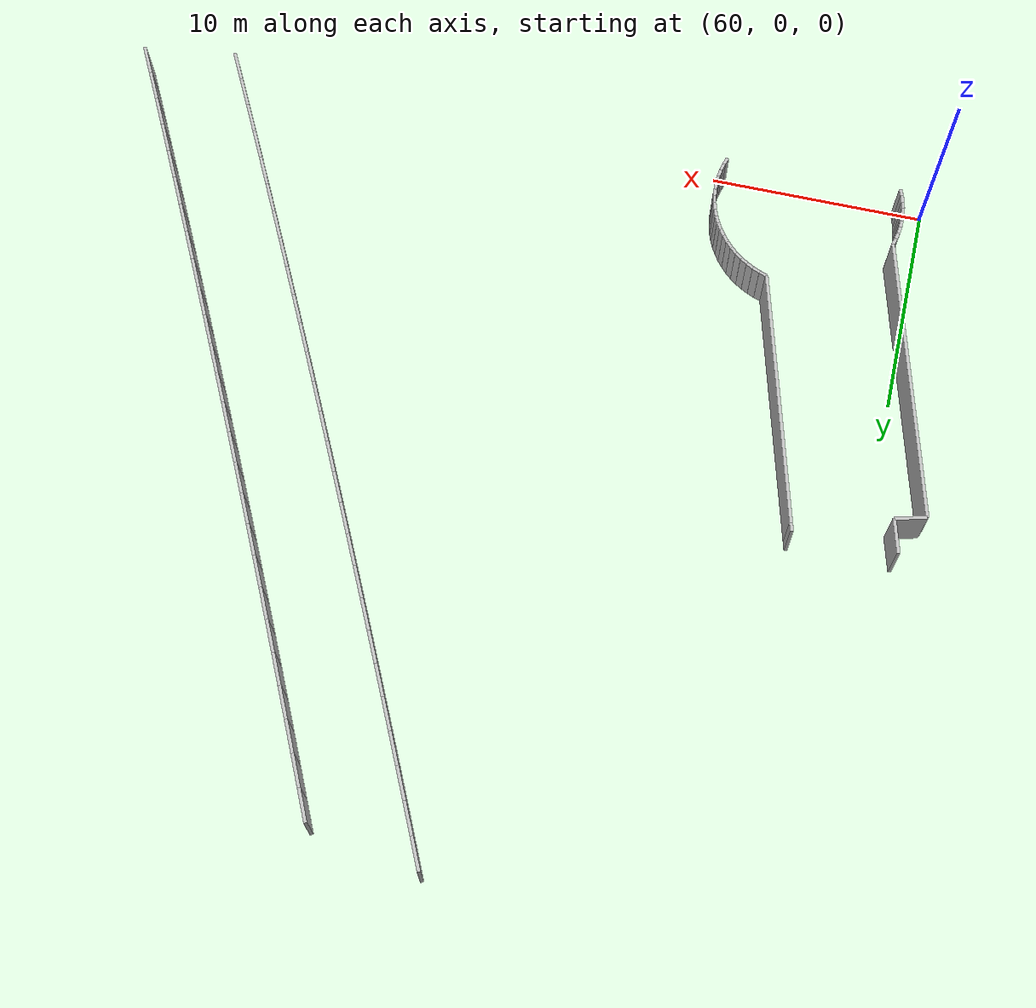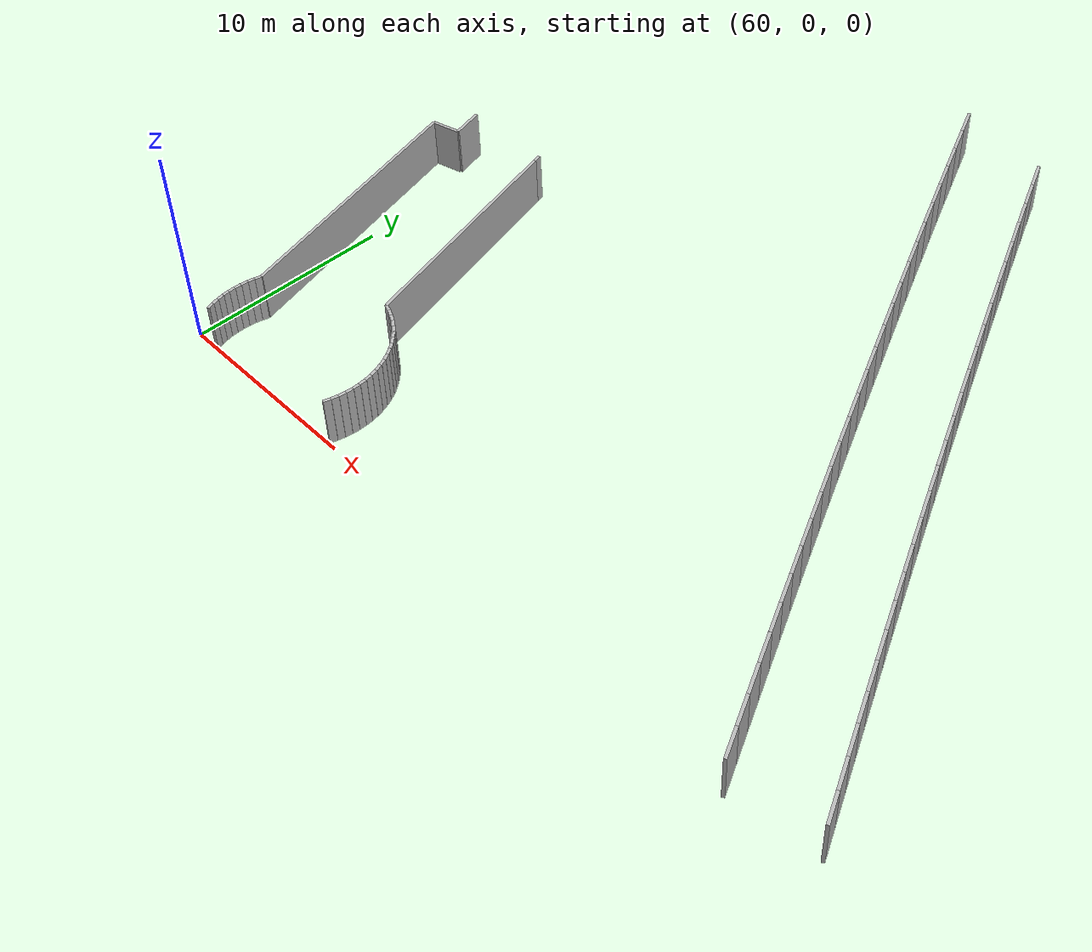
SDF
<sdf version="1.6">
 <model name="sps_0207">
  <static>1</static>
  <allow_auto_disable>0</allow_auto_disable>
  <link name="Wall270">
   <collision name="collision"><geometry><box><size>0.404023 0.15 2.5</size></box></geometry></collision>
   <visual name="visual">
    <geometry><box><size>0.404023 0.15 2.5</size></box></geometry>
    <transparency>0.0</transparency>
   </visual>
   <pose>63.4606 17.6979 1.25 0 -0 1.83141</pose>
  </link>
  <link name="Wall329">
   <collision name="collision"><geometry><box><size>1.61069 0.15 2.5</size></box></geometry></collision>
   <visual name="visual">
    <geometry><box><size>1.61069 0.15 2.5</size></box></geometry>
    <transparency>0.0</transparency>
   </visual>
   <pose>58.9327 17.1149 1.25 0 -0 1.83117</pose>
  </link>
  <link name="Wall1853">
   <collision name="collision"><geometry><box><size>12.1005 0.15 2.5</size></box></geometry></collision>
   <visual name="visual">
    <geometry><box><size>12.1005 0.15 2.5</size></box></geometry>
    <transparency>0.0</transparency>
   </visual>
   <pose>65.0825 11.6597 1.25 0 0 -1.30832</pose>
  </link>
  <link name="Wall1854">
   <collision name="collision"><geometry><box><size>0.359052 0.15 2.5</size></box></geometry></collision>
   <visual name="visual">
    <geometry><box><size>0.359052 0.15 2.5</size></box></geometry>
    <transparency>0.0</transparency>
   </visual>
   <pose>66.8222 5.75838 1.25 0 0 -0.330674</pose>
  </link>
  <link name="Wall1855">
   <collision name="collision"><geometry><box><size>0.358996 0.15 2.5</size></box></geometry></collision>
   <visual name="visual">
    <geometry><box><size>0.358996 0.15 2.5</size></box></geometry>
    <transparency>0.0</transparency>
   </visual>
   <pose>67.1565 5.6281 1.25 0 0 -0.412683</pose>
  </link>
  <link name="Wall1856">
   <collision name="collision"><geometry><box><size>0.359076 0.15 2.5</size></box></geometry></collision>
   <visual name="visual">
    <geometry><box><size>0.359076 0.15 2.5</size></box></geometry>
    <transparency>0.0</transparency>
   </visual>
   <pose>67.479 5.47099 1.25 0 0 -0.493907</pose>
  </link>
  <link name="Wall1857">
   <collision name="collision"><geometry><box><size>0.359122 0.15 2.5</size></box></geometry></collision>
   <visual name="visual">
    <geometry><box><size>0.359122 0.15 2.5</size></box></geometry>
    <transparency>0.0</transparency>
   </visual>
   <pose>67.7877 5.2881 1.25 0 0 -0.575841</pose>
  </link>
  <link name="Wall1858">
   <collision name="collision"><geometry><box><size>0.35892 0.15 2.5</size></box></geometry></collision>
   <visual name="visual">
    <geometry><box><size>0.35892 0.15 2.5</size></box></geometry>
    <transparency>0.0</transparency>
   </visual>
   <pose>68.0803 5.0807 1.25 0 0 -0.657106</pose>
  </link>
  <link name="Wall1859">
   <collision name="collision"><geometry><box><size>0.359021 0.15 2.5</size></box></geometry></collision>
   <visual name="visual">
    <geometry><box><size>0.359021 0.15 2.5</size></box></geometry>
    <transparency>0.0</transparency>
   </visual>
   <pose>68.355 4.85008 1.25 0 0 -0.739702</pose>
  </link>
  <link name="Wall1860">
   <collision name="collision"><geometry><box><size>0.358995 0.15 2.5</size></box></geometry></collision>
   <visual name="visual">
    <geometry><box><size>0.358995 0.15 2.5</size></box></geometry>
    <transparency>0.0</transparency>
   </visual>
   <pose>68.61 4.59779 1.25 0 0 -0.820389</pose>
  </link>
  <link name="Wall1861">
   <collision name="collision"><geometry><box><size>0.359109 0.15 2.5</size></box></geometry></collision>
   <visual name="visual">
    <geometry><box><size>0.359109 0.15 2.5</size></box></geometry>
    <transparency>0.0</transparency>
   </visual>
   <pose>68.8437 4.32561 1.25 0 0 -0.90224</pose>
  </link>
  <link name="Wall1862">
   <collision name="collision"><geometry><box><size>0.359062 0.15 2.5</size></box></geometry></collision>
   <visual name="visual">
    <geometry><box><size>0.359062 0.15 2.5</size></box></geometry>
    <transparency>0.0</transparency>
   </visual>
   <pose>69.0544 4.0352 1.25 0 0 -0.984067</pose>
  </link>
  <link name="Wall1863">
   <collision name="collision"><geometry><box><size>0.358927 0.15 2.5</size></box></geometry></collision>
   <visual name="visual">
    <geometry><box><size>0.358927 0.15 2.5</size></box></geometry>
    <transparency>0.0</transparency>
   </visual>
   <pose>69.2407 3.72868 1.25 0 0 -1.06523</pose>
  </link>
  <link name="Wall1864">
   <collision name="collision"><geometry><box><size>0.359119 0.15 2.5</size></box></geometry></collision>
   <visual name="visual">
    <geometry><box><size>0.359119 0.15 2.5</size></box></geometry>
    <transparency>0.0</transparency>
   </visual>
   <pose>69.4015 3.40797 1.25 0 0 -1.14729</pose>
  </link>
  <link name="Wall1865">
   <collision name="collision"><geometry><box><size>0.359057 0.15 2.5</size></box></geometry></collision>
   <visual name="visual">
    <geometry><box><size>0.359057 0.15 2.5</size></box></geometry>
    <transparency>0.0</transparency>
   </visual>
   <pose>69.5355 3.07518 1.25 0 0 -1.22824</pose>
  </link>
  <link name="Wall1866">
   <collision name="collision"><geometry><box><size>0.359079 0.15 2.5</size></box></geometry></collision>
   <visual name="visual">
    <geometry><box><size>0.359079 0.15 2.5</size></box></geometry>
    <transparency>0.0</transparency>
   </visual>
   <pose>69.6421 2.73259 1.25 0 0 -1.31052</pose>
  </link>
  <link name="Wall1867">
   <collision name="collision"><geometry><box><size>0.359147 0.15 2.5</size></box></geometry></collision>
   <visual name="visual">
    <geometry><box><size>0.359147 0.15 2.5</size></box></geometry>
    <transparency>0.0</transparency>
   </visual>
   <pose>69.7203 2.3824 1.25 0 0 -1.39157</pose>
  </link>
  <link name="Wall1868">
   <collision name="collision"><geometry><box><size>0.359111 0.15 2.5</size></box></geometry></collision>
   <visual name="visual">
    <geometry><box><size>0.359111 0.15 2.5</size></box></geometry>
    <transparency>0.0</transparency>
   </visual>
   <pose>69.7697 2.02699 1.25 0 0 -1.47377</pose>
  </link>
  <link name="Wall1869">
   <collision name="collision"><geometry><box><size>0.359053 0.15 2.5</size></box></geometry></collision>
   <visual name="visual">
    <geometry><box><size>0.359053 0.15 2.5</size></box></geometry>
    <transparency>0.0</transparency>
   </visual>
   <pose>69.7899 1.66878 1.25 0 0 -1.55516</pose>
  </link>
  <link name="Wall1870">
   <collision name="collision"><geometry><box><size>0.358944 0.15 2.5</size></box></geometry></collision>
   <visual name="visual">
    <geometry><box><size>0.358944 0.15 2.5</size></box></geometry>
    <transparency>0.0</transparency>
   </visual>
   <pose>69.7808 1.31019 1.25 0 0 -1.63716</pose>
  </link>
  <link name="Wall1871">
   <collision name="collision"><geometry><box><size>0.359136 0.15 2.5</size></box></geometry></collision>
   <visual name="visual">
    <geometry><box><size>0.359136 0.15 2.5</size></box></geometry>
    <transparency>0.0</transparency>
   </visual>
   <pose>69.7425 0.953505 1.25 0 0 -1.71851</pose>
  </link>
  <link name="Wall1872">
   <collision name="collision"><geometry><box><size>0.358993 0.15 2.5</size></box></geometry></collision>
   <visual name="visual">
    <geometry><box><size>0.358993 0.15 2.5</size></box></geometry>
    <transparency>0.0</transparency>
   </visual>
   <pose>69.6753 0.601088 1.25 0 0 -1.79994</pose>
  </link>
  <link name="Wall1873">
   <collision name="collision"><geometry><box><size>0.359076 0.15 2.5</size></box></geometry></collision>
   <visual name="visual">
    <geometry><box><size>0.359076 0.15 2.5</size></box></geometry>
    <transparency>0.0</transparency>
   </visual>
   <pose>69.5795 0.255385 1.25 0 0 -1.88228</pose>
  </link>
  <link name="Wall1900">
   <collision name="collision"><geometry><box><size>0.335259 0.15 2.5</size></box></geometry></collision>
   <visual name="visual">
    <geometry><box><size>0.335259 0.15 2.5</size></box></geometry>
    <transparency>0.0</transparency>
   </visual>
   <pose>61.2461 0.148513 1.25 0 -0 1.90775</pose>
  </link>
  <link name="Wall1901">
   <collision name="collision"><geometry><box><size>0.335064 0.15 2.5</size></box></geometry></collision>
   <visual name="visual">
    <geometry><box><size>0.335064 0.15 2.5</size></box></geometry>
    <transparency>0.0</transparency>
   </visual>
   <pose>61.1475 0.468612 1.25 0 -0 1.83093</pose>
  </link>
  <link name="Wall1902">
   <collision name="collision"><geometry><box><size>0.33526 0.15 2.5</size></box></geometry></collision>
   <visual name="visual">
    <geometry><box><size>0.33526 0.15 2.5</size></box></geometry>
    <transparency>0.0</transparency>
   </visual>
   <pose>61.0738 0.795302 1.25 0 -0 1.75498</pose>
  </link>
  <link name="Wall1903">
   <collision name="collision"><geometry><box><size>0.335131 0.15 2.5</size></box></geometry></collision>
   <visual name="visual">
    <geometry><box><size>0.335131 0.15 2.5</size></box></geometry>
    <transparency>0.0</transparency>
   </visual>
   <pose>61.025 1.12669 1.25 0 -0 1.67846</pose>
  </link>
  <link name="Wall1904">
   <collision name="collision"><geometry><box><size>0.335379 0.15 2.5</size></box></geometry></collision>
   <visual name="visual">
    <geometry><box><size>0.335379 0.15 2.5</size></box></geometry>
    <transparency>0.0</transparency>
   </visual>
   <pose>61.0016 1.46089 1.25 0 -0 1.60301</pose>
  </link>
  <link name="Wall1905">
   <collision name="collision"><geometry><box><size>0.335114 0.15 2.5</size></box></geometry></collision>
   <visual name="visual">
    <geometry><box><size>0.335114 0.15 2.5</size></box></geometry>
    <transparency>0.0</transparency>
   </visual>
   <pose>61.0037 1.79588 1.25 0 -0 1.52598</pose>
  </link>
  <link name="Wall1906">
   <collision name="collision"><geometry><box><size>0.335268 0.15 2.5</size></box></geometry></collision>
   <visual name="visual">
    <geometry><box><size>0.335268 0.15 2.5</size></box></geometry>
    <transparency>0.0</transparency>
   </visual>
   <pose>61.0315 2.12968 1.25 0 -0 1.44999</pose>
  </link>
  <link name="Wall1907">
   <collision name="collision"><geometry><box><size>0.335279 0.15 2.5</size></box></geometry></collision>
   <visual name="visual">
    <geometry><box><size>0.335279 0.15 2.5</size></box></geometry>
    <transparency>0.0</transparency>
   </visual>
   <pose>61.0845 2.46049 1.25 0 -0 1.37383</pose>
  </link>
  <link name="Wall1908">
   <collision name="collision"><geometry><box><size>0.335232 0.15 2.5</size></box></geometry></collision>
   <visual name="visual">
    <geometry><box><size>0.335232 0.15 2.5</size></box></geometry>
    <transparency>0.0</transparency>
   </visual>
   <pose>61.1625 2.7863 1.25 0 -0 1.29777</pose>
  </link>
  <link name="Wall1909">
   <collision name="collision"><geometry><box><size>13.4709 0.15 2.5</size></box></geometry></collision>
   <visual name="visual">
    <geometry><box><size>13.4709 0.15 2.5</size></box></geometry>
    <transparency>0.0</transparency>
   </visual>
   <pose>59.4733 9.45601 1.25 0 -0 1.83123</pose>
  </link>
  <link name="Wall1910">
   <collision name="collision"><geometry><box><size>1.44982 0.15 2.5</size></box></geometry></collision>
   <visual name="visual">
    <geometry><box><size>1.44982 0.15 2.5</size></box></geometry>
    <transparency>0.0</transparency>
   </visual>
   <pose>58.4394 16.1505 1.25 0 -0 0.259754</pose>
  </link>
  <link name="Wall8336">
   <collision name="collision"><geometry><box><size>1.49884 0.15 2.5</size></box></geometry></collision>
   <visual name="visual">
    <geometry><box><size>1.49884 0.15 2.5</size></box></geometry>
    <transparency>0.0</transparency>
   </visual>
   <pose>76.0597 34.9892 1.25 0 0 -1.12727</pose>
  </link>
  <link name="Wall8337">
   <collision name="collision"><geometry><box><size>1.49912 0.15 2.5</size></box></geometry></collision>
   <visual name="visual">
    <geometry><box><size>1.49912 0.15 2.5</size></box></geometry>
    <transparency>0.0</transparency>
   </visual>
   <pose>76.7041 33.6358 1.25 0 0 -1.12556</pose>
  </link>
  <link name="Wall8338">
   <collision name="collision"><geometry><box><size>1.49891 0.15 2.5</size></box></geometry></collision>
   <visual name="visual">
    <geometry><box><size>1.49891 0.15 2.5</size></box></geometry>
    <transparency>0.0</transparency>
   </visual>
   <pose>77.3507 32.2834 1.25 0 0 -1.12405</pose>
  </link>
  <link name="Wall8339">
   <collision name="collision"><geometry><box><size>1.49891 0.15 2.5</size></box></geometry></collision>
   <visual name="visual">
    <geometry><box><size>1.49891 0.15 2.5</size></box></geometry>
    <transparency>0.0</transparency>
   </visual>
   <pose>77.9993 30.9321 1.25 0 0 -1.12256</pose>
  </link>
  <link name="Wall8340">
   <collision name="collision"><geometry><box><size>1.499 0.15 2.5</size></box></geometry></collision>
   <visual name="visual">
    <geometry><box><size>1.499 0.15 2.5</size></box></geometry>
    <transparency>0.0</transparency>
   </visual>
   <pose>78.65 29.5818 1.25 0 0 -1.12082</pose>
  </link>
  <link name="Wall8341">
   <collision name="collision"><geometry><box><size>1.49895 0.15 2.5</size></box></geometry></collision>
   <visual name="visual">
    <geometry><box><size>1.49895 0.15 2.5</size></box></geometry>
    <transparency>0.0</transparency>
   </visual>
   <pose>79.303 28.2325 1.25 0 0 -1.11931</pose>
  </link>
  <link name="Wall8342">
   <collision name="collision"><geometry><box><size>1.499 0.15 2.5</size></box></geometry></collision>
   <visual name="visual">
    <geometry><box><size>1.499 0.15 2.5</size></box></geometry>
    <transparency>0.0</transparency>
   </visual>
   <pose>79.958 26.8842 1.25 0 0 -1.11784</pose>
  </link>
  <link name="Wall8343">
   <collision name="collision"><geometry><box><size>1.49882 0.15 2.5</size></box></geometry></collision>
   <visual name="visual">
    <geometry><box><size>1.49882 0.15 2.5</size></box></geometry>
    <transparency>0.0</transparency>
   </visual>
   <pose>80.6151 25.537 1.25 0 0 -1.11615</pose>
  </link>
  <link name="Wall8344">
   <collision name="collision"><geometry><box><size>1.49912 0.15 2.5</size></box></geometry></collision>
   <visual name="visual">
    <geometry><box><size>1.49912 0.15 2.5</size></box></geometry>
    <transparency>0.0</transparency>
   </visual>
   <pose>81.2744 24.1908 1.25 0 0 -1.11461</pose>
  </link>
  <link name="Wall8345">
   <collision name="collision"><geometry><box><size>1.49883 0.15 2.5</size></box></geometry></collision>
   <visual name="visual">
    <geometry><box><size>1.49883 0.15 2.5</size></box></geometry>
    <transparency>0.0</transparency>
   </visual>
   <pose>81.9359 22.8457 1.25 0 0 -1.11289</pose>
  </link>
  <link name="Wall8346">
   <collision name="collision"><geometry><box><size>1.49896 0.15 2.5</size></box></geometry></collision>
   <visual name="visual">
    <geometry><box><size>1.49896 0.15 2.5</size></box></geometry>
    <transparency>0.0</transparency>
   </visual>
   <pose>82.5995 21.5017 1.25 0 0 -1.11143</pose>
  </link>
  <link name="Wall8347">
   <collision name="collision"><geometry><box><size>1.4989 0.15 2.5</size></box></geometry></collision>
   <visual name="visual">
    <geometry><box><size>1.4989 0.15 2.5</size></box></geometry>
    <transparency>0.0</transparency>
   </visual>
   <pose>83.2653 20.1587 1.25 0 0 -1.10977</pose>
  </link>
  <link name="Wall8348">
   <collision name="collision"><geometry><box><size>1.49892 0.15 2.5</size></box></geometry></collision>
   <visual name="visual">
    <geometry><box><size>1.49892 0.15 2.5</size></box></geometry>
    <transparency>0.0</transparency>
   </visual>
   <pose>83.9331 18.8168 1.25 0 0 -1.10828</pose>
  </link>
  <link name="Wall8349">
   <collision name="collision"><geometry><box><size>1.49911 0.15 2.5</size></box></geometry></collision>
   <visual name="visual">
    <geometry><box><size>1.49911 0.15 2.5</size></box></geometry>
    <transparency>0.0</transparency>
   </visual>
   <pose>84.603 17.4758 1.25 0 0 -1.10675</pose>
  </link>
  <link name="Wall8350">
   <collision name="collision"><geometry><box><size>1.49909 0.15 2.5</size></box></geometry></collision>
   <visual name="visual">
    <geometry><box><size>1.49909 0.15 2.5</size></box></geometry>
    <transparency>0.0</transparency>
   </visual>
   <pose>85.275 16.1358 1.25 0 0 -1.10505</pose>
  </link>
  <link name="Wall8351">
   <collision name="collision"><geometry><box><size>1.49887 0.15 2.5</size></box></geometry></collision>
   <visual name="visual">
    <geometry><box><size>1.49887 0.15 2.5</size></box></geometry>
    <transparency>0.0</transparency>
   </visual>
   <pose>85.9492 14.797 1.25 0 0 -1.10352</pose>
  </link>
  <link name="Wall8352">
   <collision name="collision"><geometry><box><size>1.49894 0.15 2.5</size></box></geometry></collision>
   <visual name="visual">
    <geometry><box><size>1.49894 0.15 2.5</size></box></geometry>
    <transparency>0.0</transparency>
   </visual>
   <pose>86.6254 13.4593 1.25 0 0 -1.102</pose>
  </link>
  <link name="Wall8353">
   <collision name="collision"><geometry><box><size>1.49882 0.15 2.5</size></box></geometry></collision>
   <visual name="visual">
    <geometry><box><size>1.49882 0.15 2.5</size></box></geometry>
    <transparency>0.0</transparency>
   </visual>
   <pose>87.3038 12.1227 1.25 0 0 -1.10036</pose>
  </link>
  <link name="Wall8354">
   <collision name="collision"><geometry><box><size>1.49889 0.15 2.5</size></box></geometry></collision>
   <visual name="visual">
    <geometry><box><size>1.49889 0.15 2.5</size></box></geometry>
    <transparency>0.0</transparency>
   </visual>
   <pose>87.9842 10.7872 1.25 0 0 -1.09874</pose>
  </link>
  <link name="Wall8355">
   <collision name="collision"><geometry><box><size>1.49894 0.15 2.5</size></box></geometry></collision>
   <visual name="visual">
    <geometry><box><size>1.49894 0.15 2.5</size></box></geometry>
    <transparency>0.0</transparency>
   </visual>
   <pose>88.6668 9.45271 1.25 0 0 -1.09724</pose>
  </link>
  <link name="Wall8356">
   <collision name="collision"><geometry><box><size>1.49894 0.15 2.5</size></box></geometry></collision>
   <visual name="visual">
    <geometry><box><size>1.49894 0.15 2.5</size></box></geometry>
    <transparency>0.0</transparency>
   </visual>
   <pose>89.3516 8.11931 1.25 0 0 -1.09555</pose>
  </link>
  <link name="Wall8357">
   <collision name="collision"><geometry><box><size>1.49899 0.15 2.5</size></box></geometry></collision>
   <visual name="visual">
    <geometry><box><size>1.49899 0.15 2.5</size></box></geometry>
    <transparency>0.0</transparency>
   </visual>
   <pose>90.0385 6.787 1.25 0 0 -1.09396</pose>
  </link>
  <link name="Wall8358">
   <collision name="collision"><geometry><box><size>1.49878 0.15 2.5</size></box></geometry></collision>
   <visual name="visual">
    <geometry><box><size>1.49878 0.15 2.5</size></box></geometry>
    <transparency>0.0</transparency>
   </visual>
   <pose>90.7273 5.45579 1.25 0 0 -1.09256</pose>
  </link>
  <link name="Wall8359">
   <collision name="collision"><geometry><box><size>1.49898 0.15 2.5</size></box></geometry></collision>
   <visual name="visual">
    <geometry><box><size>1.49898 0.15 2.5</size></box></geometry>
    <transparency>0.0</transparency>
   </visual>
   <pose>91.4183 4.12569 1.25 0 0 -1.0908</pose>
  </link>
  <link name="Wall8360">
   <collision name="collision"><geometry><box><size>1.49905 0.15 2.5</size></box></geometry></collision>
   <visual name="visual">
    <geometry><box><size>1.49905 0.15 2.5</size></box></geometry>
    <transparency>0.0</transparency>
   </visual>
   <pose>92.1115 2.79658 1.25 0 0 -1.0893</pose>
  </link>
  <link name="Wall8361">
   <collision name="collision"><geometry><box><size>1.4989 0.15 2.5</size></box></geometry></collision>
   <visual name="visual">
    <geometry><box><size>1.4989 0.15 2.5</size></box></geometry>
    <transparency>0.0</transparency>
   </visual>
   <pose>92.8068 1.46858 1.25 0 0 -1.08774</pose>
  </link>
  <link name="Wall8362">
   <collision name="collision"><geometry><box><size>1.49903 0.15 2.5</size></box></geometry></collision>
   <visual name="visual">
    <geometry><box><size>1.49903 0.15 2.5</size></box></geometry>
    <transparency>0.0</transparency>
   </visual>
   <pose>93.5041 0.141677 1.25 0 0 -1.08617</pose>
  </link>
  <link name="Wall9419">
   <collision name="collision"><geometry><box><size>1.49247 0.15 2.5</size></box></geometry></collision>
   <visual name="visual">
    <geometry><box><size>1.49247 0.15 2.5</size></box></geometry>
    <transparency>0.0</transparency>
   </visual>
   <pose>81.0843 34.0723 1.25 0 0 -1.12407</pose>
  </link>
  <link name="Wall9420">
   <collision name="collision"><geometry><box><size>1.49224 0.15 2.5</size></box></geometry></collision>
   <visual name="visual">
    <geometry><box><size>1.49224 0.15 2.5</size></box></geometry>
    <transparency>0.0</transparency>
   </visual>
   <pose>81.73 32.7269 1.25 0 0 -1.1225</pose>
  </link>
  <link name="Wall9421">
   <collision name="collision"><geometry><box><size>1.49256 0.15 2.5</size></box></geometry></collision>
   <visual name="visual">
    <geometry><box><size>1.49256 0.15 2.5</size></box></geometry>
    <transparency>0.0</transparency>
   </visual>
   <pose>82.378 31.3825 1.25 0 0 -1.12092</pose>
  </link>
  <link name="Wall9422">
   <collision name="collision"><geometry><box><size>1.49226 0.15 2.5</size></box></geometry></collision>
   <visual name="visual">
    <geometry><box><size>1.49226 0.15 2.5</size></box></geometry>
    <transparency>0.0</transparency>
   </visual>
   <pose>83.028 30.0391 1.25 0 0 -1.11937</pose>
  </link>
  <link name="Wall9423">
   <collision name="collision"><geometry><box><size>1.49234 0.15 2.5</size></box></geometry></collision>
   <visual name="visual">
    <geometry><box><size>1.49234 0.15 2.5</size></box></geometry>
    <transparency>0.0</transparency>
   </visual>
   <pose>83.6801 28.6968 1.25 0 0 -1.11776</pose>
  </link>
  <link name="Wall9424">
   <collision name="collision"><geometry><box><size>1.49251 0.15 2.5</size></box></geometry></collision>
   <visual name="visual">
    <geometry><box><size>1.49251 0.15 2.5</size></box></geometry>
    <transparency>0.0</transparency>
   </visual>
   <pose>84.3345 27.3555 1.25 0 0 -1.11604</pose>
  </link>
  <link name="Wall9425">
   <collision name="collision"><geometry><box><size>1.49238 0.15 2.5</size></box></geometry></collision>
   <visual name="visual">
    <geometry><box><size>1.49238 0.15 2.5</size></box></geometry>
    <transparency>0.0</transparency>
   </visual>
   <pose>84.991 26.0152 1.25 0 0 -1.11463</pose>
  </link>
  <link name="Wall9426">
   <collision name="collision"><geometry><box><size>1.49256 0.15 2.5</size></box></geometry></collision>
   <visual name="visual">
    <geometry><box><size>1.49256 0.15 2.5</size></box></geometry>
    <transparency>0.0</transparency>
   </visual>
   <pose>85.6496 24.6759 1.25 0 0 -1.11291</pose>
  </link>
  <link name="Wall9427">
   <collision name="collision"><geometry><box><size>1.49227 0.15 2.5</size></box></geometry></collision>
   <visual name="visual">
    <geometry><box><size>1.49227 0.15 2.5</size></box></geometry>
    <transparency>0.0</transparency>
   </visual>
   <pose>86.3103 23.3377 1.25 0 0 -1.11145</pose>
  </link>
  <link name="Wall9428">
   <collision name="collision"><geometry><box><size>1.49245 0.15 2.5</size></box></geometry></collision>
   <visual name="visual">
    <geometry><box><size>1.49245 0.15 2.5</size></box></geometry>
    <transparency>0.0</transparency>
   </visual>
   <pose>86.9731 22.0006 1.25 0 0 -1.10973</pose>
  </link>
  <link name="Wall9429">
   <collision name="collision"><geometry><box><size>1.4924 0.15 2.5</size></box></geometry></collision>
   <visual name="visual">
    <geometry><box><size>1.4924 0.15 2.5</size></box></geometry>
    <transparency>0.0</transparency>
   </visual>
   <pose>87.6381 20.6645 1.25 0 0 -1.10825</pose>
  </link>
  <link name="Wall9430">
   <collision name="collision"><geometry><box><size>1.4925 0.15 2.5</size></box></geometry></collision>
   <visual name="visual">
    <geometry><box><size>1.4925 0.15 2.5</size></box></geometry>
    <transparency>0.0</transparency>
   </visual>
   <pose>88.305 19.3294 1.25 0 0 -1.10673</pose>
  </link>
  <link name="Wall9431">
   <collision name="collision"><geometry><box><size>1.4924 0.15 2.5</size></box></geometry></collision>
   <visual name="visual">
    <geometry><box><size>1.4924 0.15 2.5</size></box></geometry>
    <transparency>0.0</transparency>
   </visual>
   <pose>88.9741 17.9953 1.25 0 0 -1.10523</pose>
  </link>
  <link name="Wall9432">
   <collision name="collision"><geometry><box><size>1.49246 0.15 2.5</size></box></geometry></collision>
   <visual name="visual">
    <geometry><box><size>1.49246 0.15 2.5</size></box></geometry>
    <transparency>0.0</transparency>
   </visual>
   <pose>89.6453 16.6623 1.25 0 0 -1.10342</pose>
  </link>
  <link name="Wall9433">
   <collision name="collision"><geometry><box><size>1.49231 0.15 2.5</size></box></geometry></collision>
   <visual name="visual">
    <geometry><box><size>1.49231 0.15 2.5</size></box></geometry>
    <transparency>0.0</transparency>
   </visual>
   <pose>90.3187 15.3305 1.25 0 0 -1.1019</pose>
  </link>
  <link name="Wall9434">
   <collision name="collision"><geometry><box><size>1.49229 0.15 2.5</size></box></geometry></collision>
   <visual name="visual">
    <geometry><box><size>1.49229 0.15 2.5</size></box></geometry>
    <transparency>0.0</transparency>
   </visual>
   <pose>90.994 13.9998 1.25 0 0 -1.10038</pose>
  </link>
  <link name="Wall9435">
   <collision name="collision"><geometry><box><size>1.49237 0.15 2.5</size></box></geometry></collision>
   <visual name="visual">
    <geometry><box><size>1.49237 0.15 2.5</size></box></geometry>
    <transparency>0.0</transparency>
   </visual>
   <pose>91.6715 12.6701 1.25 0 0 -1.09875</pose>
  </link>
  <link name="Wall9436">
   <collision name="collision"><geometry><box><size>1.49241 0.15 2.5</size></box></geometry></collision>
   <visual name="visual">
    <geometry><box><size>1.49241 0.15 2.5</size></box></geometry>
    <transparency>0.0</transparency>
   </visual>
   <pose>92.3511 11.3414 1.25 0 0 -1.09725</pose>
  </link>
  <link name="Wall9437">
   <collision name="collision"><geometry><box><size>1.49239 0.15 2.5</size></box></geometry></collision>
   <visual name="visual">
    <geometry><box><size>1.49239 0.15 2.5</size></box></geometry>
    <transparency>0.0</transparency>
   </visual>
   <pose>93.0328 10.0138 1.25 0 0 -1.09559</pose>
  </link>
  <link name="Wall9438">
   <collision name="collision"><geometry><box><size>1.49255 0.15 2.5</size></box></geometry></collision>
   <visual name="visual">
    <geometry><box><size>1.49255 0.15 2.5</size></box></geometry>
    <transparency>0.0</transparency>
   </visual>
   <pose>93.7166 8.68721 1.25 0 0 -1.09413</pose>
  </link>
  <link name="Wall9439">
   <collision name="collision"><geometry><box><size>1.49237 0.15 2.5</size></box></geometry></collision>
   <visual name="visual">
    <geometry><box><size>1.49237 0.15 2.5</size></box></geometry>
    <transparency>0.0</transparency>
   </visual>
   <pose>94.4025 7.36171 1.25 0 0 -1.09241</pose>
  </link>
  <link name="Wall9440">
   <collision name="collision"><geometry><box><size>1.49246 0.15 2.5</size></box></geometry></collision>
   <visual name="visual">
    <geometry><box><size>1.49246 0.15 2.5</size></box></geometry>
    <transparency>0.0</transparency>
   </visual>
   <pose>95.0907 6.0374 1.25 0 0 -1.09078</pose>
  </link>
  <link name="Wall9441">
   <collision name="collision"><geometry><box><size>1.49241 0.15 2.5</size></box></geometry></collision>
   <visual name="visual">
    <geometry><box><size>1.49241 0.15 2.5</size></box></geometry>
    <transparency>0.0</transparency>
   </visual>
   <pose>95.7808 4.7141 1.25 0 0 -1.08943</pose>
  </link>
  <link name="Wall9442">
   <collision name="collision"><geometry><box><size>1.49238 0.15 2.5</size></box></geometry></collision>
   <visual name="visual">
    <geometry><box><size>1.49238 0.15 2.5</size></box></geometry>
    <transparency>0.0</transparency>
   </visual>
   <pose>96.4729 3.39189 1.25 0 0 -1.08771</pose>
  </link>
  <link name="Wall9443">
   <collision name="collision"><geometry><box><size>1.49229 0.15 2.5</size></box></geometry></collision>
   <visual name="visual">
    <geometry><box><size>1.49229 0.15 2.5</size></box></geometry>
    <transparency>0.0</transparency>
   </visual>
   <pose>97.1672 2.07091 1.25 0 0 -1.08606</pose>
  </link>
  <link name="Wall9444">
   <collision name="collision"><geometry><box><size>1.49237 0.15 2.5</size></box></geometry></collision>
   <visual name="visual">
    <geometry><box><size>1.49237 0.15 2.5</size></box></geometry>
    <transparency>0.0</transparency>
   </visual>
   <pose>97.8635 0.751021 1.25 0 0 -1.08456</pose>
  </link>
 </model>
</sdf>
